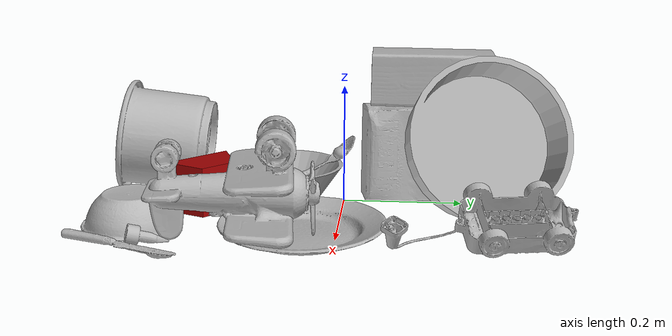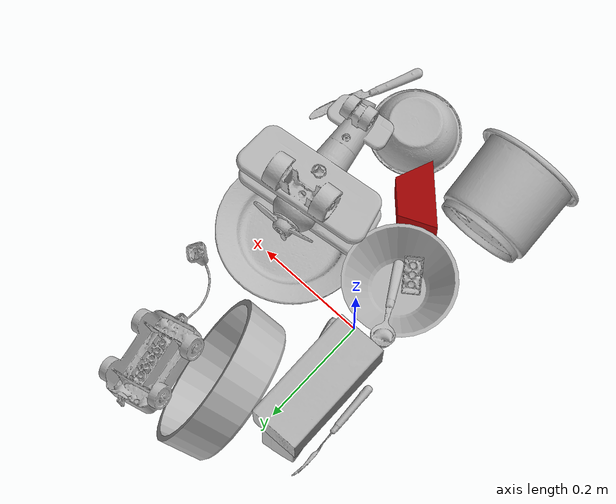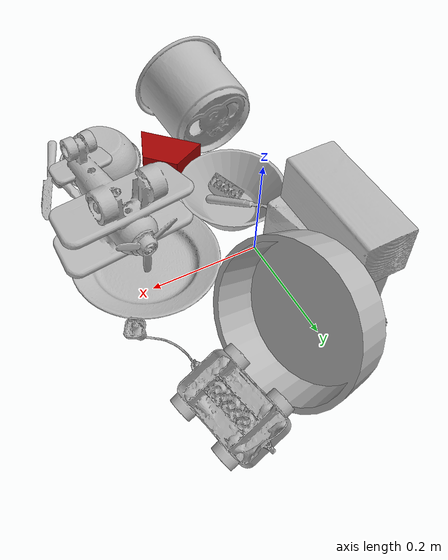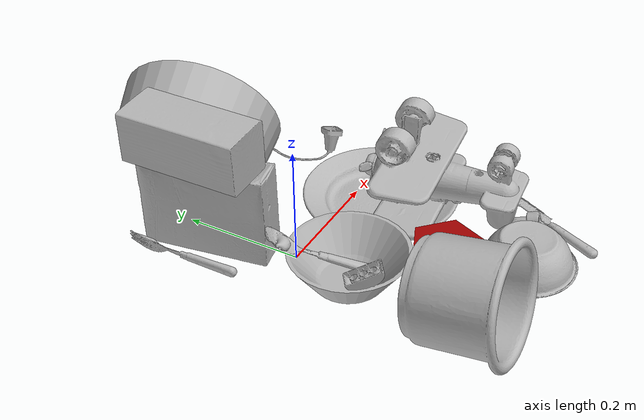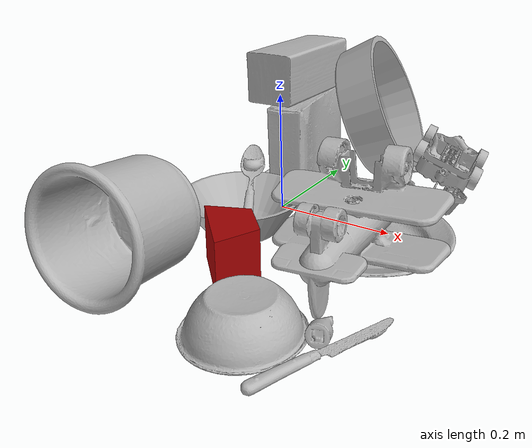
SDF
<sdf version="1.4">
  <world name="default">
    <light name="light1" type="point">
      <pose>0 0 1 0 0 0</pose>
      <diffuse>3 3 3 1</diffuse>
      <specular>3 3 3 1</specular>
    </light>
    <light name="light2" type="point">
      <pose>0 0.5 2 0 0 0</pose>
      <diffuse>1 1 1 1</diffuse>
      <specular>1 1 1 1</specular>
    </light>
    <light name="light3" type="point">
      <pose>0 0.5 2 0 0 0</pose>
      <diffuse>3 3 3 1</diffuse>
      <specular>3 3 3 1</specular>
    </light>
    <scene>
      <ambient>0.7 0.7 0.7</ambient>
    </scene>
    <model name="plate1">
      <link name="link_plate1">
        <collision name="default">
          <geometry>
            <mesh>
              <uri>model://plate/collision_meshes/collision.obj</uri>
              <scale>1.0 1.0 1.0</scale>
            </mesh>
          </geometry>
          <surface>
            <friction>
              <ode>
                <mu>0.5</mu>
                <mu2>0.5</mu2>
              </ode>
            </friction>
          <contact>
        <ode>
            <max_vel>0</max_vel>
            <min_depth>0.0001</min_depth>
            <kp>1e8</kp>
        </ode>
    </contact></surface>
        </collision>
        <visual name="default">
          <geometry>
            <mesh>
              <uri>model://plate/visual_meshes/visual.dae</uri>
              <scale>1.0 1.0 1.0</scale>
            </mesh>
          </geometry>
        </visual>
        <inertial>
          <mass>0.18013060092926025</mass>
          <pose>-0.0006044624606147408 0.0002782579977065325 -0.0010561981471255422 0.0022187543261248163 -0.003225499970721242 0.452618951787785</pose>
          <inertia>
            <ixx>0.00084265455</ixx>
            <iyy>0.000834595</iyy>
            <izz>0.0016481068</izz>
            <ixy>0</ixy>
            <ixz>0</ixz>
            <iyz>0</iyz>
          </inertia>
        </inertial>
      </link>
      <pose>0.1901688575744629 -0.051680486649274826 0.013733313418924809 2.603270506151519e-07 -5.263766209501782e-06 1.741355745844483</pose>
    </model>
    <model name="plate2">
      <link name="link_plate2">
        <collision name="default">
          <geometry>
            <mesh>
              <uri>model://pan_tefal/collision_meshes/collision.obj</uri>
              <scale>1.0 1.0 1.0</scale>
            </mesh>
          </geometry>
          <surface>
            <friction>
              <ode>
                <mu>0.5</mu>
                <mu2>0.5</mu2>
              </ode>
            </friction>
          <contact>
        <ode>
            <max_vel>0</max_vel>
            <min_depth>0.0001</min_depth>
            <kp>1e8</kp>
        </ode>
    </contact></surface>
        </collision>
        <visual name="default">
          <geometry>
            <mesh>
              <uri>model://pan_tefal/visual_meshes/visual.dae</uri>
              <scale>1.0 1.0 1.0</scale>
            </mesh>
          </geometry>
        </visual>
        <inertial>
          <mass>1.1554980278015137</mass>
          <pose>-0.00018001958960667253 3.279018710600212e-05 -0.008514934219419956 0.0008190268412404128 -0.0003301434555644904 -0.33185316474518306</pose>
          <inertia>
            <ixx>0.007976347</ixx>
            <iyy>0.008027771</iyy>
            <izz>0.014682918</izz>
            <ixy>0</ixy>
            <ixz>0</ixz>
            <iyz>0</iyz>
          </inertia>
        </inertial>
      </link>
      <pose>0.0746488943696022 0.231062114238739 0.12821714580059052 1.099101694139034 0.5749744297789581 1.537536771176116</pose>
    </model>
    <model name="bowl1">
      <link name="link_bowl1">
        <collision name="default">
          <geometry>
            <mesh>
              <uri>model://bowl/collision_meshes/collision.obj</uri>
              <scale>1.0 1.0 1.0</scale>
            </mesh>
          </geometry>
          <surface>
            <friction>
              <ode>
                <mu>0.5</mu>
                <mu2>0.5</mu2>
              </ode>
            </friction>
          <contact>
        <ode>
            <max_vel>0</max_vel>
            <min_depth>0.0001</min_depth>
            <kp>1e8</kp>
        </ode>
    </contact></surface>
        </collision>
        <visual name="default">
          <geometry>
            <mesh>
              <uri>model://bowl/visual_meshes/visual.dae</uri>
              <scale>1.0 1.0 1.0</scale>
            </mesh>
          </geometry>
        </visual>
        <inertial>
          <mass>0.08154366910457611</mass>
          <pose>0.0002044497523456812 -0.0010302083101123571 -0.0008042664267122746 -0.01576409235239578 0.014546819263349199 0.7140418673414882</pose>
          <inertia>
            <ixx>0.00018731231</ixx>
            <iyy>0.000183127</iyy>
            <izz>0.00031512365</izz>
            <ixy>0</ixy>
            <ixz>0</ixz>
            <iyz>0</iyz>
          </inertia>
        </inertial>
      </link>
      <pose>0.15844902396202087 -0.3281139135360718 0.027247369289398193 -3.132723919951691 0.0006755526205159231 1.315907977275464</pose>
    </model>
    <model name="bowl2">
      <link name="link_bowl2">
        <collision name="default">
          <geometry>
            <mesh>
              <uri>model://bowl_a/collision_meshes/collision.obj</uri>
              <scale>1.0 1.0 1.0</scale>
            </mesh>
          </geometry>
          <surface>
            <friction>
              <ode>
                <mu>0.5</mu>
                <mu2>0.5</mu2>
              </ode>
            </friction>
          <contact>
        <ode>
            <max_vel>0</max_vel>
            <min_depth>0.0001</min_depth>
            <kp>1e8</kp>
        </ode>
    </contact></surface>
        </collision>
        <visual name="default">
          <geometry>
            <mesh>
              <uri>model://bowl_a/visual_meshes/visual.dae</uri>
              <scale>1.0 1.0 1.0</scale>
            </mesh>
          </geometry>
        </visual>
        <inertial>
          <mass>0.4363987147808075</mass>
          <pose>0.0002786752884276211 4.73113359475974e-05 -0.0013765294570475817 -0.0009805318297205425 -0.0010938254473046036 -0.19123908587825994</pose>
          <inertia>
            <ixx>0.0012424473</ixx>
            <iyy>0.001250075</iyy>
            <izz>0.0022097398</izz>
            <ixy>0</ixy>
            <ixz>0</ixz>
            <iyz>0</iyz>
          </inertia>
        </inertial>
      </link>
      <pose>-0.008488587103784084 -0.10114828497171402 0.030383003875613213 4.4042315647547824e-08 4.1164466821845225e-08 0.6652497740900911</pose>
    </model>
    <model name="silverware1">
      <link name="link_silverware1">
        <collision name="default">
          <geometry>
            <mesh>
              <uri>model://spoon/collision_meshes/collision.obj</uri>
              <scale>1.0 1.0 1.0</scale>
            </mesh>
          </geometry>
          <surface>
            <friction>
              <ode>
                <mu>0.5</mu>
                <mu2>0.5</mu2>
              </ode>
            </friction>
          <contact>
        <ode>
            <max_vel>0</max_vel>
            <min_depth>0.0001</min_depth>
            <kp>1e8</kp>
        </ode>
    </contact></surface>
        </collision>
        <visual name="default">
          <geometry>
            <mesh>
              <uri>model://spoon/visual_meshes/visual.dae</uri>
              <scale>1.0 1.0 1.0</scale>
            </mesh>
          </geometry>
        </visual>
        <inertial>
          <mass>0.034700214862823486</mass>
          <pose>-0.00552632100880146 -0.0016034168656915426 -0.0007271654903888702 0.03521477925438783 -0.03906582568380071 0.006150611591128785</pose>
          <inertia>
            <ixx>1.9300821e-06</ixx>
            <iyy>0.00013203312</iyy>
            <izz>0.00013298499</izz>
            <ixy>0</ixy>
            <ixz>0</ixz>
            <iyz>0</iyz>
          </inertia>
        </inertial>
      </link>
      <pose>-0.02515307627618313 -0.06043845787644386 0.048061635345220566 -0.031387110793078044 -0.383220316940234 2.099739032191393</pose>
    </model>
    <model name="box1">
      <link name="link_box1">
        <collision name="default">
          <geometry>
            <mesh>
              <uri>model://cracker_box/collision_meshes/collision.obj</uri>
              <scale>1.0 1.0 1.0</scale>
            </mesh>
          </geometry>
          <surface>
            <friction>
              <ode>
                <mu>0.5</mu>
                <mu2>0.5</mu2>
              </ode>
            </friction>
          <contact>
        <ode>
            <max_vel>0</max_vel>
            <min_depth>0.0001</min_depth>
            <kp>1e8</kp>
        </ode>
    </contact></surface>
        </collision>
        <visual name="default">
          <geometry>
            <mesh>
              <uri>model://cracker_box/visual_meshes/visual.dae</uri>
              <scale>1.0 1.0 1.0</scale>
            </mesh>
          </geometry>
        </visual>
        <inertial>
          <mass>1.831273078918457</mass>
          <pose>0.000946414191275835 0.00025434247800149024 -0.0017029533628374338 -0.0003162074786093215 -0.01110648680647863 0.0025467950006863548</pose>
          <inertia>
            <ixx>0.0046579414</ixx>
            <iyy>0.0076911766</iyy>
            <izz>0.010976015</izz>
            <ixy>0</ixy>
            <ixz>0</ixz>
            <iyz>0</iyz>
          </inertia>
        </inertial>
      </link>
      <pose>-0.031687695533037186 0.1374620646238327 0.08175840228796005 1.5451974981924237 0.009043244189679868 1.7506707371795382</pose>
    </model>
    <model name="box2">
      <link name="link_box2">
        <collision name="default">
          <geometry>
            <mesh>
              <uri>model://wood_block/collision_meshes/collision.obj</uri>
              <scale>1.0 1.0 1.0</scale>
            </mesh>
          </geometry>
          <surface>
            <friction>
              <ode>
                <mu>0.5</mu>
                <mu2>0.5</mu2>
              </ode>
            </friction>
          <contact>
        <ode>
            <max_vel>0</max_vel>
            <min_depth>0.0001</min_depth>
            <kp>1e8</kp>
        </ode>
    </contact></surface>
        </collision>
        <visual name="default">
          <geometry>
            <mesh>
              <uri>model://wood_block/visual_meshes/visual.dae</uri>
              <scale>1.0 1.0 1.0</scale>
            </mesh>
          </geometry>
        </visual>
        <inertial>
          <mass>1.0038666725158691</mass>
          <pose>-5.813315510749817e-06 -0.000570809468626976 0.0002640858292579651 -0.05221020962952386 -0.005192696059900718 -0.006861377701075274</pose>
          <inertia>
            <ixx>0.0013433257</ixx>
            <iyy>0.0042435657</iyy>
            <izz>0.0042276927</izz>
            <ixy>0</ixy>
            <ixz>0</ixz>
            <iyz>0</iyz>
          </inertia>
        </inertial>
      </link>
      <pose>-0.053962551057338715 0.14620909094810486 0.20843666791915894 -0.011324847636280461 0.01412431867139428 1.5875629832453841</pose>
    </model>
    <model name="cup1">
      <link name="link_cup1">
        <collision name="default">
          <geometry>
            <mesh>
              <uri>model://i_cups/collision_meshes/collision.obj</uri>
              <scale>2.0 2.0 2.0</scale>
            </mesh>
          </geometry>
          <surface>
            <friction>
              <ode>
                <mu>0.5</mu>
                <mu2>0.5</mu2>
              </ode>
            </friction>
          <contact>
        <ode>
            <max_vel>0</max_vel>
            <min_depth>0.0001</min_depth>
            <kp>1e8</kp>
        </ode>
    </contact></surface>
        </collision>
        <visual name="default">
          <geometry>
            <mesh>
              <uri>model://i_cups/visual_meshes/visual.dae</uri>
              <scale>2.0 2.0 2.0</scale>
            </mesh>
          </geometry>
        </visual>
        <inertial>
          <mass>0.6038269996643066</mass>
          <pose>0.00022479970357380807 0.0003359453985467553 -0.001715799910016358 -0.02898255198870416 -0.03987340808103542 -0.3459203892901821</pose>
          <inertia>
            <ixx>0.0033440301</ixx>
            <iyy>0.003373493</iyy>
            <izz>0.0037374943</izz>
            <ixy>0</ixy>
            <ixz>0</ixz>
            <iyz>0</iyz>
          </inertia>
        </inertial>
      </link>
      <pose>-0.04875119775533676 -0.31503215432167053 0.08967210352420807 1.440447793184447 0.4702812681535264 0.0033088845143102084</pose>
    </model>
    <model name="silverware2">
      <link name="link_silverware2">
        <collision name="default">
          <geometry>
            <mesh>
              <uri>model://knife/collision_meshes/collision.obj</uri>
              <scale>1.0 1.0 1.0</scale>
            </mesh>
          </geometry>
          <surface>
            <friction>
              <ode>
                <mu>0.5</mu>
                <mu2>0.5</mu2>
              </ode>
            </friction>
          <contact>
        <ode>
            <max_vel>0</max_vel>
            <min_depth>0.0001</min_depth>
            <kp>1e8</kp>
        </ode>
    </contact></surface>
        </collision>
        <visual name="default">
          <geometry>
            <mesh>
              <uri>model://knife/visual_meshes/visual.dae</uri>
              <scale>1.0 1.0 1.0</scale>
            </mesh>
          </geometry>
        </visual>
        <inertial>
          <mass>0.01351180113852024</mass>
          <pose>-0.023785246536135674 0.0015275131445378065 5.062015407020226e-05 0.073058244240525 0.017248418380522417 -0.007409818685807072</pose>
          <inertia>
            <ixx>3.8351965e-07</ixx>
            <iyy>5.1910156e-05</iyy>
            <izz>5.2033673e-05</izz>
            <ixy>0</ixy>
            <ixz>0</ixz>
            <iyz>0</iyz>
          </inertia>
        </inertial>
      </link>
      <pose>0.2677954435348511 -0.32158592343330383 0.007943977601826191 0.009486382999062282 -0.014365294759589472 1.1525770579437904</pose>
    </model>
    <model name="silverware3">
      <link name="link_silverware3">
        <collision name="default">
          <geometry>
            <mesh>
              <uri>model://fork/collision_meshes/collision.obj</uri>
              <scale>1.0 1.0 1.0</scale>
            </mesh>
          </geometry>
          <surface>
            <friction>
              <ode>
                <mu>0.5</mu>
                <mu2>0.5</mu2>
              </ode>
            </friction>
          <contact>
        <ode>
            <max_vel>0</max_vel>
            <min_depth>0.0001</min_depth>
            <kp>1e8</kp>
        </ode>
    </contact></surface>
        </collision>
        <visual name="default">
          <geometry>
            <mesh>
              <uri>model://fork/visual_meshes/visual.dae</uri>
              <scale>1.0 1.0 1.0</scale>
            </mesh>
          </geometry>
        </visual>
        <inertial>
          <mass>0.030749449506402016</mass>
          <pose>-0.029570044949650764 0.0004658822435885668 0.00032188615296036005 -0.013551266353778695 -0.010977839115777554 0.014453902178384312</pose>
          <inertia>
            <ixx>1.0779423e-06</ixx>
            <iyy>8.0277954e-05</iyy>
            <izz>8.076011e-05</izz>
            <ixy>0</ixy>
            <ixz>0</ixz>
            <iyz>0</iyz>
          </inertia>
        </inertial>
      </link>
      <pose>-0.09360532462596893 0.15401744842529297 0.011520070023834705 1.3856740734544681 -0.02731262733331234 1.6399296918700224</pose>
    </model>
    <model name="toy1">
      <link name="link_toy1">
        <collision name="default">
          <geometry>
            <mesh>
              <uri>model://e_toy_airplane/collision_meshes/collision.obj</uri>
              <scale>1.0 1.0 1.0</scale>
            </mesh>
          </geometry>
          <surface>
            <friction>
              <ode>
                <mu>0.5</mu>
                <mu2>0.5</mu2>
              </ode>
            </friction>
          <contact>
        <ode>
            <max_vel>0</max_vel>
            <min_depth>0.0001</min_depth>
            <kp>1e8</kp>
        </ode>
    </contact></surface>
        </collision>
        <visual name="default">
          <geometry>
            <mesh>
              <uri>model://e_toy_airplane/visual_meshes/visual.dae</uri>
              <scale>1.0 1.0 1.0</scale>
            </mesh>
          </geometry>
        </visual>
        <inertial>
          <mass>0.01770107075572014</mass>
          <pose>0.00011740486661437899 -2.248296732432209e-05 -0.011187206022441387 0.005518513464699853 0.009228302242376646 0.15041570361631973</pose>
          <inertia>
            <ixx>5.4025695e-06</ixx>
            <iyy>5.3473045e-06</iyy>
            <izz>1.6236847e-06</izz>
            <ixy>0</ixy>
            <ixz>0</ixz>
            <iyz>0</iyz>
          </inertia>
        </inertial>
      </link>
      <pose>0.24242003262043 -0.2804732918739319 0.01080870907753706 -2.1451863215263565 1.1028468855625266 -0.20361207055110975</pose>
    </model>
    <model name="toy2">
      <link name="link_toy2">
        <collision name="default">
          <geometry>
            <mesh>
              <uri>model://a_toy_airplane/collision_meshes/collision.obj</uri>
              <scale>1.0 1.0 1.0</scale>
            </mesh>
          </geometry>
          <surface>
            <friction>
              <ode>
                <mu>0.5</mu>
                <mu2>0.5</mu2>
              </ode>
            </friction>
          <contact>
        <ode>
            <max_vel>0</max_vel>
            <min_depth>0.0001</min_depth>
            <kp>1e8</kp>
        </ode>
    </contact></surface>
        </collision>
        <visual name="default">
          <geometry>
            <mesh>
              <uri>model://a_toy_airplane/visual_meshes/visual.dae</uri>
              <scale>1.0 1.0 1.0</scale>
            </mesh>
          </geometry>
        </visual>
        <inertial>
          <mass>1.6391528844833374</mass>
          <pose>0.02516508661210537 -0.003707319963723421 -0.0011962438002228737 -0.012016999892079352 -0.14663507149587088 0.004149061575203148</pose>
          <inertia>
            <ixx>0.0059525487</ixx>
            <iyy>0.008674072</iyy>
            <izz>0.01015627</izz>
            <ixy>0</ixy>
            <ixz>0</ixz>
            <iyz>0</iyz>
          </inertia>
        </inertial>
      </link>
      <pose>0.21265827119350433 -0.15506941080093384 0.07723566144704819 3.126454001562902 -0.16900677888460056 1.702980265708316</pose>
    </model>
    <model name="toy3">
      <link name="link_toy3">
        <collision name="default">
          <geometry>
            <mesh>
              <uri>model://g_lego_duplo/collision_meshes/collision.obj</uri>
              <scale>1.0 1.0 1.0</scale>
            </mesh>
          </geometry>
          <surface>
            <friction>
              <ode>
                <mu>0.5</mu>
                <mu2>0.5</mu2>
              </ode>
            </friction>
          <contact>
        <ode>
            <max_vel>0</max_vel>
            <min_depth>0.0001</min_depth>
            <kp>1e8</kp>
        </ode>
    </contact></surface>
        </collision>
        <visual name="default">
          <geometry>
            <mesh>
              <uri>model://g_lego_duplo/visual_meshes/visual.dae</uri>
              <scale>1.0 1.0 1.0</scale>
            </mesh>
          </geometry>
        </visual>
        <inertial>
          <mass>0.5092288255691528</mass>
          <pose>-0.05004768446087837 0.0017554641235619783 0.0038806775119155645 0.010963010010498962 0.03810823590924119 -0.09653024292159736</pose>
          <inertia>
            <ixx>0.00073787844</ixx>
            <iyy>0.002230844</iyy>
            <izz>0.002790868</izz>
            <ixy>0</ixy>
            <ixz>0</ixz>
            <iyz>0</iyz>
          </inertia>
        </inertial>
      </link>
      <pose>0.21669524908065796 0.2129850685596466 0.03686865419149399 2.7679205663899533 0.0026772680705463027 -1.3814375821633662</pose>
    </model>
    <model name="toy4">
      <link name="link_toy4">
        <collision name="default">
          <geometry>
            <mesh>
              <uri>model://a_lego_duplo/collision_meshes/collision.obj</uri>
              <scale>1.0 1.0 1.0</scale>
            </mesh>
          </geometry>
          <surface>
            <friction>
              <ode>
                <mu>0.5</mu>
                <mu2>0.5</mu2>
              </ode>
            </friction>
          <contact>
        <ode>
            <max_vel>0</max_vel>
            <min_depth>0.0001</min_depth>
            <kp>1e8</kp>
        </ode>
    </contact></surface>
        </collision>
        <visual name="default">
          <geometry>
            <mesh>
              <uri>model://a_lego_duplo/visual_meshes/visual.dae</uri>
              <scale>1.0 1.0 1.0</scale>
            </mesh>
          </geometry>
        </visual>
        <inertial>
          <mass>0.03161923587322235</mass>
          <pose>-0.00011337598698446527 0.00018517524586059153 0.00036926084430888295 -0.014116977368405541 -0.00012565500284871778 6.143069663272407e-05</pose>
          <inertia>
            <ixx>4.0538393e-06</ixx>
            <iyy>9.081488e-06</iyy>
            <izz>1.1249442e-05</izz>
            <ixy>0</ixy>
            <ixz>0</ixz>
            <iyz>0</iyz>
          </inertia>
        </inertial>
      </link>
      <pose>-0.01148751750588417 -0.13139399886131287 0.020096316933631897 -3.1337550541935015 -0.36719996859366416 -0.9410354147615799</pose>
    </model>
    <model name="toy5">
      <link name="link_toy5">
        <collision name="default">
          <geometry>
            <mesh>
              <uri>model://prism/collision_meshes/collision.obj</uri>
              <scale>1.0 1.0 1.0</scale>
            </mesh>
          </geometry>
          <surface>
            <friction>
              <ode>
                <mu>0.5</mu>
                <mu2>0.5</mu2>
              </ode>
            </friction>
          <contact>
        <ode>
            <max_vel>0</max_vel>
            <min_depth>0.0001</min_depth>
            <kp>1e8</kp>
        </ode>
    </contact></surface>
        </collision>
        <visual name="default">
          <geometry>
            <mesh>
              <uri>model://prism/visual_meshes/visual.dae</uri>
              <scale>1.0 1.0 1.0</scale>
            </mesh>
          </geometry>
        </visual>
        <inertial>
          <mass>0.5650969743728638</mass>
          <pose>-9.85359656624496e-05 -4.96157269935793e-07 -0.0033869100734591484 0.0 0.006559179369129768 0.0</pose>
          <inertia>
            <ixx>0.00050999306</ixx>
            <iyy>0.00061633316</iyy>
            <izz>0.00075493456</izz>
            <ixy>0</ixy>
            <ixz>0</ixz>
            <iyz>0</iyz>
          </inertia>
        </inertial>
      </link>
      <pose>0.06560903042554855 -0.2227986454963684 0.04158851504325867 1.5836357206504863 5.064616177050102e-07 2.3645653788050636</pose>
    </model>
  <physics type="ode">
      <max_contacts>50</max_contacts>
      <ode>
        <solver>
          <type>quick</type>
          <iters>75</iters>
        </solver>
        <constraints>
          <contact_max_correcting_vel>0</contact_max_correcting_vel>
          <contact_surface_layer>0</contact_surface_layer>
        </constraints>
      </ode>
    </physics></world>
</sdf>
